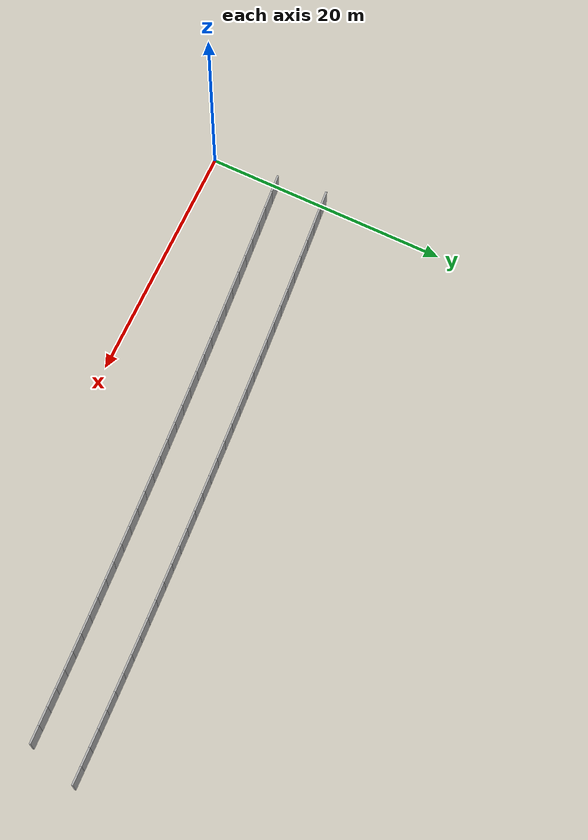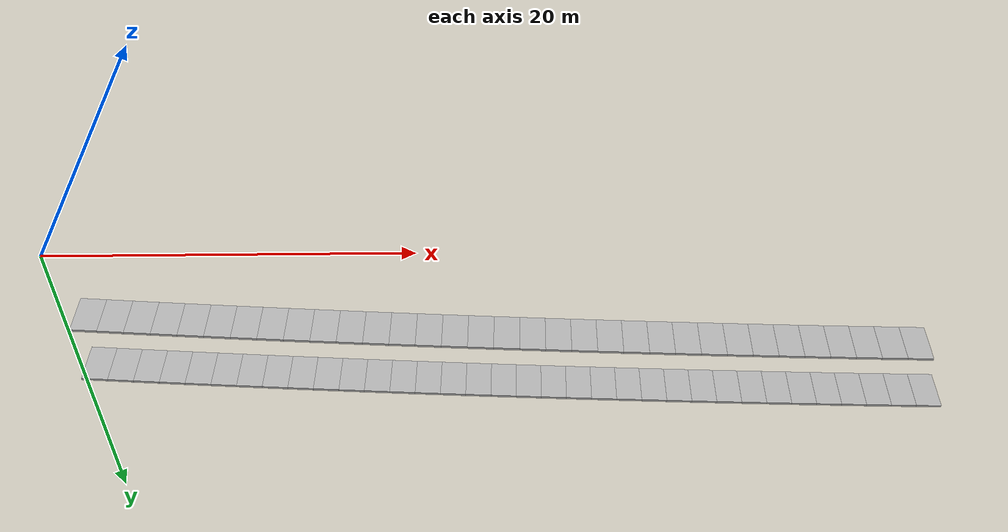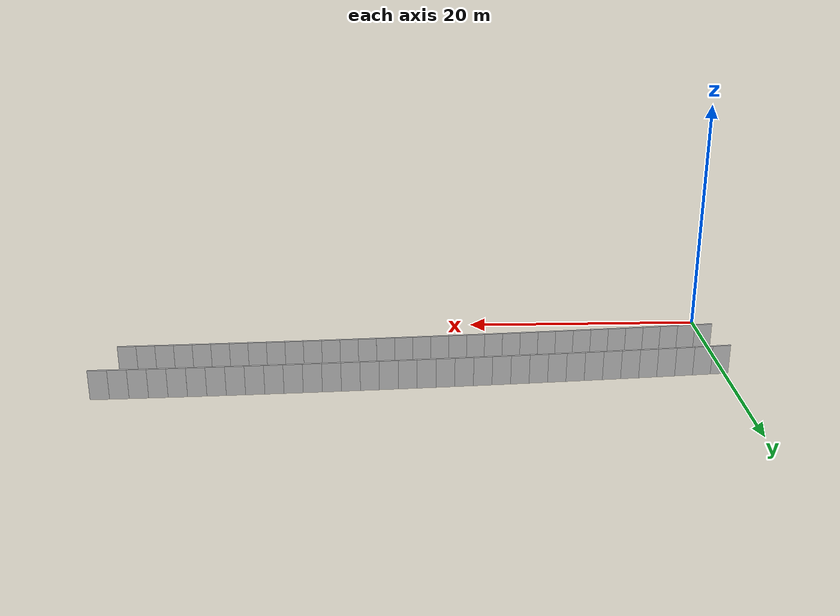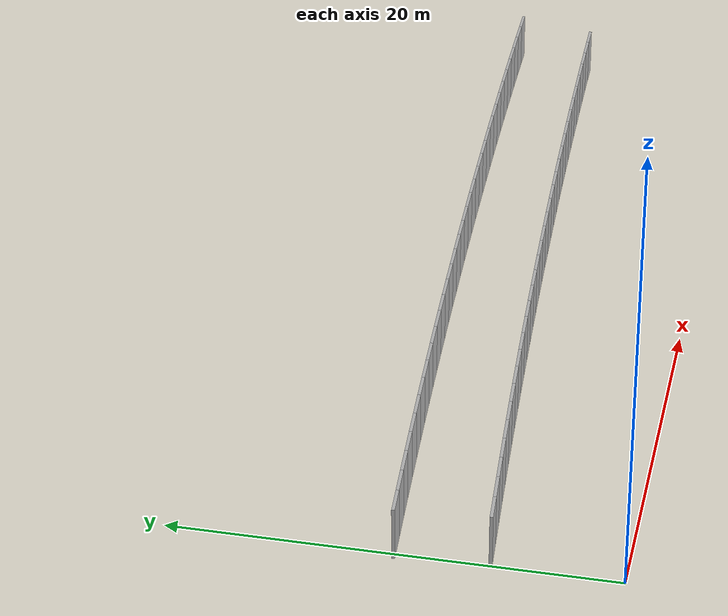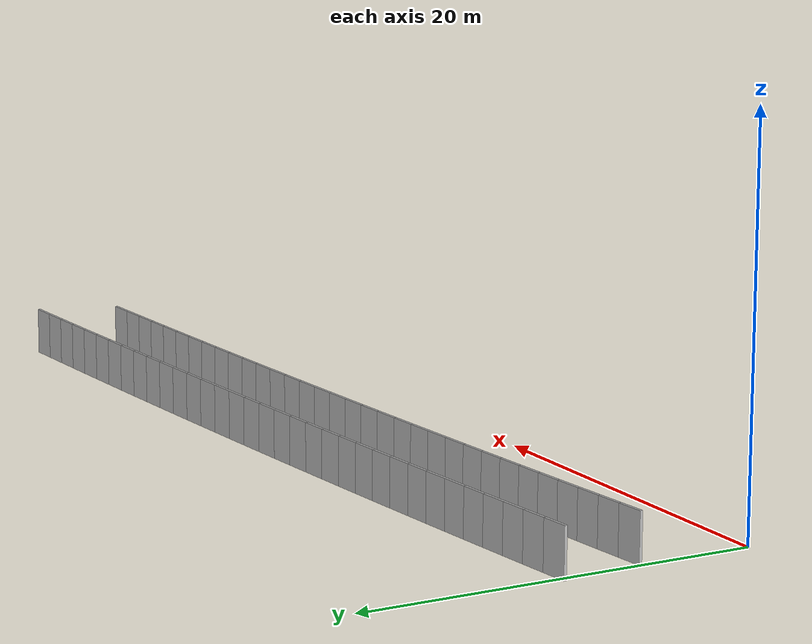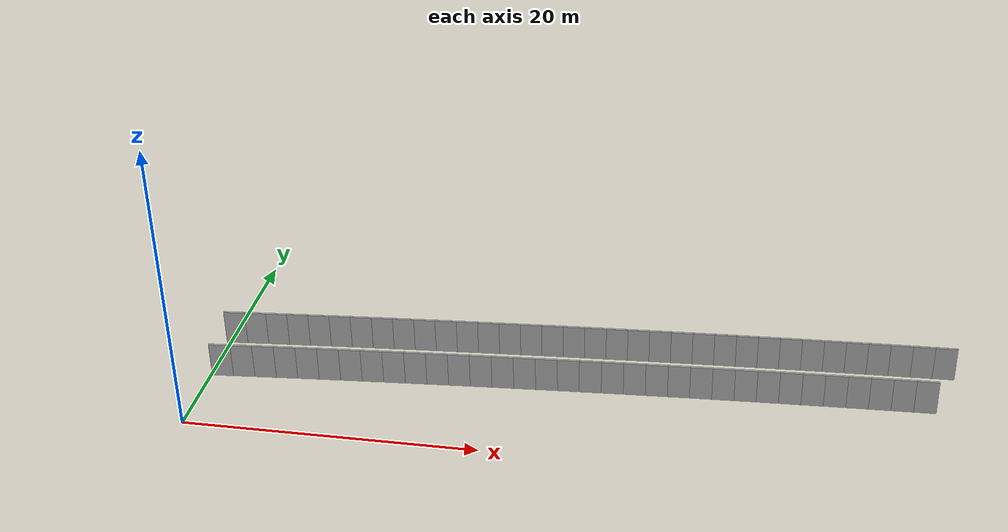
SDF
<?xml version="1.0" ?>
<sdf version="1.6">
  <model name="sps_2247">
    <pose frame="">0 0 0 0 -0 0</pose>
    <static>1</static>
    <self_collide>0</self_collide>
    <allow_auto_disable>0</allow_auto_disable>
    <link name="Wall2886">
      <kinematic>0</kinematic>
      <gravity>1</gravity>
      <self_collide>0</self_collide>
      <collision name="collision">
        <geometry>
          <box>
            <size>1.49631 0.15 2.5</size>
          </box>
        </geometry>
        <pose frame="">0 0 0 0 -0 0</pose>
      </collision>
      <visual name="visual">
        <geometry>
          <box>
            <size>1.49631 0.15 2.5</size>
          </box>
        </geometry>
        <pose frame="">0 0 0 0 -0 0</pose>
        <cast_shadows>1</cast_shadows>
        <transparency>0.0</transparency>
      </visual>
      <pose frame="">48.5933 8.70598 1.25 0 0 -3.10589</pose>
    </link>
    <link name="Wall2887">
      <kinematic>0</kinematic>
      <gravity>1</gravity>
      <self_collide>0</self_collide>
      <collision name="collision">
        <geometry>
          <box>
            <size>1.49647 0.15 2.5</size>
          </box>
        </geometry>
        <pose frame="">0 0 0 0 -0 0</pose>
      </collision>
      <visual name="visual">
        <geometry>
          <box>
            <size>1.49647 0.15 2.5</size>
          </box>
        </geometry>
        <pose frame="">0 0 0 0 -0 0</pose>
        <cast_shadows>1</cast_shadows>
        <transparency>0.0</transparency>
      </visual>
      <pose frame="">47.098 8.65129 1.25 0 0 -3.10418</pose>
    </link>
    <link name="Wall2888">
      <kinematic>0</kinematic>
      <gravity>1</gravity>
      <self_collide>0</self_collide>
      <collision name="collision">
        <geometry>
          <box>
            <size>1.49649 0.15 2.5</size>
          </box>
        </geometry>
        <pose frame="">0 0 0 0 -0 0</pose>
      </collision>
      <visual name="visual">
        <geometry>
          <box>
            <size>1.49649 0.15 2.5</size>
          </box>
        </geometry>
        <pose frame="">0 0 0 0 -0 0</pose>
        <cast_shadows>1</cast_shadows>
        <transparency>0.0</transparency>
      </visual>
      <pose frame="">45.6026 8.59419 1.25 0 0 -3.10267</pose>
    </link>
    <link name="Wall2889">
      <kinematic>0</kinematic>
      <gravity>1</gravity>
      <self_collide>0</self_collide>
      <collision name="collision">
        <geometry>
          <box>
            <size>1.49647 0.15 2.5</size>
          </box>
        </geometry>
        <pose frame="">0 0 0 0 -0 0</pose>
      </collision>
      <visual name="visual">
        <geometry>
          <box>
            <size>1.49647 0.15 2.5</size>
          </box>
        </geometry>
        <pose frame="">0 0 0 0 -0 0</pose>
        <cast_shadows>1</cast_shadows>
        <transparency>0.0</transparency>
      </visual>
      <pose frame="">44.1073 8.53477 1.25 0 0 -3.10108</pose>
    </link>
    <link name="Wall2890">
      <kinematic>0</kinematic>
      <gravity>1</gravity>
      <self_collide>0</self_collide>
      <collision name="collision">
        <geometry>
          <box>
            <size>1.4965 0.15 2.5</size>
          </box>
        </geometry>
        <pose frame="">0 0 0 0 -0 0</pose>
      </collision>
      <visual name="visual">
        <geometry>
          <box>
            <size>1.4965 0.15 2.5</size>
          </box>
        </geometry>
        <pose frame="">0 0 0 0 -0 0</pose>
        <cast_shadows>1</cast_shadows>
        <transparency>0.0</transparency>
      </visual>
      <pose frame="">42.6121 8.47298 1.25 0 0 -3.09949</pose>
    </link>
    <link name="Wall2891">
      <kinematic>0</kinematic>
      <gravity>1</gravity>
      <self_collide>0</self_collide>
      <collision name="collision">
        <geometry>
          <box>
            <size>1.49642 0.15 2.5</size>
          </box>
        </geometry>
        <pose frame="">0 0 0 0 -0 0</pose>
      </collision>
      <visual name="visual">
        <geometry>
          <box>
            <size>1.49642 0.15 2.5</size>
          </box>
        </geometry>
        <pose frame="">0 0 0 0 -0 0</pose>
        <cast_shadows>1</cast_shadows>
        <transparency>0.0</transparency>
      </visual>
      <pose frame="">41.117 8.4088 1.25 0 0 -3.0979</pose>
    </link>
    <link name="Wall2892">
      <kinematic>0</kinematic>
      <gravity>1</gravity>
      <self_collide>0</self_collide>
      <collision name="collision">
        <geometry>
          <box>
            <size>1.49653 0.15 2.5</size>
          </box>
        </geometry>
        <pose frame="">0 0 0 0 -0 0</pose>
      </collision>
      <visual name="visual">
        <geometry>
          <box>
            <size>1.49653 0.15 2.5</size>
          </box>
        </geometry>
        <pose frame="">0 0 0 0 -0 0</pose>
        <cast_shadows>1</cast_shadows>
        <transparency>0.0</transparency>
      </visual>
      <pose frame="">39.622 8.34221 1.25 0 0 -3.09627</pose>
    </link>
    <link name="Wall2893">
      <kinematic>0</kinematic>
      <gravity>1</gravity>
      <self_collide>0</self_collide>
      <collision name="collision">
        <geometry>
          <box>
            <size>1.49664 0.15 2.5</size>
          </box>
        </geometry>
        <pose frame="">0 0 0 0 -0 0</pose>
      </collision>
      <visual name="visual">
        <geometry>
          <box>
            <size>1.49664 0.15 2.5</size>
          </box>
        </geometry>
        <pose frame="">0 0 0 0 -0 0</pose>
        <cast_shadows>1</cast_shadows>
        <transparency>0.0</transparency>
      </visual>
      <pose frame="">38.127 8.27321 1.25 0 0 -3.09468</pose>
    </link>
    <link name="Wall2894">
      <kinematic>0</kinematic>
      <gravity>1</gravity>
      <self_collide>0</self_collide>
      <collision name="collision">
        <geometry>
          <box>
            <size>1.49638 0.15 2.5</size>
          </box>
        </geometry>
        <pose frame="">0 0 0 0 -0 0</pose>
      </collision>
      <visual name="visual">
        <geometry>
          <box>
            <size>1.49638 0.15 2.5</size>
          </box>
        </geometry>
        <pose frame="">0 0 0 0 -0 0</pose>
        <cast_shadows>1</cast_shadows>
        <transparency>0.0</transparency>
      </visual>
      <pose frame="">36.6322 8.20189 1.25 0 0 -3.09316</pose>
    </link>
    <link name="Wall2895">
      <kinematic>0</kinematic>
      <gravity>1</gravity>
      <self_collide>0</self_collide>
      <collision name="collision">
        <geometry>
          <box>
            <size>1.49668 0.15 2.5</size>
          </box>
        </geometry>
        <pose frame="">0 0 0 0 -0 0</pose>
      </collision>
      <visual name="visual">
        <geometry>
          <box>
            <size>1.49668 0.15 2.5</size>
          </box>
        </geometry>
        <pose frame="">0 0 0 0 -0 0</pose>
        <cast_shadows>1</cast_shadows>
        <transparency>0.0</transparency>
      </visual>
      <pose frame="">35.1374 8.12828 1.25 0 0 -3.09162</pose>
    </link>
    <link name="Wall2896">
      <kinematic>0</kinematic>
      <gravity>1</gravity>
      <self_collide>0</self_collide>
      <collision name="collision">
        <geometry>
          <box>
            <size>1.49638 0.15 2.5</size>
          </box>
        </geometry>
        <pose frame="">0 0 0 0 -0 0</pose>
      </collision>
      <visual name="visual">
        <geometry>
          <box>
            <size>1.49638 0.15 2.5</size>
          </box>
        </geometry>
        <pose frame="">0 0 0 0 -0 0</pose>
        <cast_shadows>1</cast_shadows>
        <transparency>0.0</transparency>
      </visual>
      <pose frame="">33.6428 8.05229 1.25 0 0 -3.08997</pose>
    </link>
    <link name="Wall2897">
      <kinematic>0</kinematic>
      <gravity>1</gravity>
      <self_collide>0</self_collide>
      <collision name="collision">
        <geometry>
          <box>
            <size>1.4965 0.15 2.5</size>
          </box>
        </geometry>
        <pose frame="">0 0 0 0 -0 0</pose>
      </collision>
      <visual name="visual">
        <geometry>
          <box>
            <size>1.4965 0.15 2.5</size>
          </box>
        </geometry>
        <pose frame="">0 0 0 0 -0 0</pose>
        <cast_shadows>1</cast_shadows>
        <transparency>0.0</transparency>
      </visual>
      <pose frame="">32.1485 7.97389 1.25 0 0 -3.08838</pose>
    </link>
    <link name="Wall2898">
      <kinematic>0</kinematic>
      <gravity>1</gravity>
      <self_collide>0</self_collide>
      <collision name="collision">
        <geometry>
          <box>
            <size>1.49663 0.15 2.5</size>
          </box>
        </geometry>
        <pose frame="">0 0 0 0 -0 0</pose>
      </collision>
      <visual name="visual">
        <geometry>
          <box>
            <size>1.49663 0.15 2.5</size>
          </box>
        </geometry>
        <pose frame="">0 0 0 0 -0 0</pose>
        <cast_shadows>1</cast_shadows>
        <transparency>0.0</transparency>
      </visual>
      <pose frame="">30.6541 7.89308 1.25 0 0 -3.08675</pose>
    </link>
    <link name="Wall2899">
      <kinematic>0</kinematic>
      <gravity>1</gravity>
      <self_collide>0</self_collide>
      <collision name="collision">
        <geometry>
          <box>
            <size>1.4964 0.15 2.5</size>
          </box>
        </geometry>
        <pose frame="">0 0 0 0 -0 0</pose>
      </collision>
      <visual name="visual">
        <geometry>
          <box>
            <size>1.4964 0.15 2.5</size>
          </box>
        </geometry>
        <pose frame="">0 0 0 0 -0 0</pose>
        <cast_shadows>1</cast_shadows>
        <transparency>0.0</transparency>
      </visual>
      <pose frame="">29.1599 7.80989 1.25 0 0 -3.08519</pose>
    </link>
    <link name="Wall2900">
      <kinematic>0</kinematic>
      <gravity>1</gravity>
      <self_collide>0</self_collide>
      <collision name="collision">
        <geometry>
          <box>
            <size>1.49653 0.15 2.5</size>
          </box>
        </geometry>
        <pose frame="">0 0 0 0 -0 0</pose>
      </collision>
      <visual name="visual">
        <geometry>
          <box>
            <size>1.49653 0.15 2.5</size>
          </box>
        </geometry>
        <pose frame="">0 0 0 0 -0 0</pose>
        <cast_shadows>1</cast_shadows>
        <transparency>0.0</transparency>
      </visual>
      <pose frame="">27.6659 7.72441 1.25 0 0 -3.08369</pose>
    </link>
    <link name="Wall2901">
      <kinematic>0</kinematic>
      <gravity>1</gravity>
      <self_collide>0</self_collide>
      <collision name="collision">
        <geometry>
          <box>
            <size>1.49644 0.15 2.5</size>
          </box>
        </geometry>
        <pose frame="">0 0 0 0 -0 0</pose>
      </collision>
      <visual name="visual">
        <geometry>
          <box>
            <size>1.49644 0.15 2.5</size>
          </box>
        </geometry>
        <pose frame="">0 0 0 0 -0 0</pose>
        <cast_shadows>1</cast_shadows>
        <transparency>0.0</transparency>
      </visual>
      <pose frame="">26.172 7.63649 1.25 0 0 -3.08193</pose>
    </link>
    <link name="Wall2902">
      <kinematic>0</kinematic>
      <gravity>1</gravity>
      <self_collide>0</self_collide>
      <collision name="collision">
        <geometry>
          <box>
            <size>1.49662 0.15 2.5</size>
          </box>
        </geometry>
        <pose frame="">0 0 0 0 -0 0</pose>
      </collision>
      <visual name="visual">
        <geometry>
          <box>
            <size>1.49662 0.15 2.5</size>
          </box>
        </geometry>
        <pose frame="">0 0 0 0 -0 0</pose>
        <cast_shadows>1</cast_shadows>
        <transparency>0.0</transparency>
      </visual>
      <pose frame="">24.6782 7.54628 1.25 0 0 -3.08063</pose>
    </link>
    <link name="Wall2903">
      <kinematic>0</kinematic>
      <gravity>1</gravity>
      <self_collide>0</self_collide>
      <collision name="collision">
        <geometry>
          <box>
            <size>1.49635 0.15 2.5</size>
          </box>
        </geometry>
        <pose frame="">0 0 0 0 -0 0</pose>
      </collision>
      <visual name="visual">
        <geometry>
          <box>
            <size>1.49635 0.15 2.5</size>
          </box>
        </geometry>
        <pose frame="">0 0 0 0 -0 0</pose>
        <cast_shadows>1</cast_shadows>
        <transparency>0.0</transparency>
      </visual>
      <pose frame="">23.1845 7.45378 1.25 0 0 -3.07886</pose>
    </link>
    <link name="Wall2904">
      <kinematic>0</kinematic>
      <gravity>1</gravity>
      <self_collide>0</self_collide>
      <collision name="collision">
        <geometry>
          <box>
            <size>1.49644 0.15 2.5</size>
          </box>
        </geometry>
        <pose frame="">0 0 0 0 -0 0</pose>
      </collision>
      <visual name="visual">
        <geometry>
          <box>
            <size>1.49644 0.15 2.5</size>
          </box>
        </geometry>
        <pose frame="">0 0 0 0 -0 0</pose>
        <cast_shadows>1</cast_shadows>
        <transparency>0.0</transparency>
      </visual>
      <pose frame="">21.6912 7.35878 1.25 0 0 -3.07727</pose>
    </link>
    <link name="Wall2905">
      <kinematic>0</kinematic>
      <gravity>1</gravity>
      <self_collide>0</self_collide>
      <collision name="collision">
        <geometry>
          <box>
            <size>1.49648 0.15 2.5</size>
          </box>
        </geometry>
        <pose frame="">0 0 0 0 -0 0</pose>
      </collision>
      <visual name="visual">
        <geometry>
          <box>
            <size>1.49648 0.15 2.5</size>
          </box>
        </geometry>
        <pose frame="">0 0 0 0 -0 0</pose>
        <cast_shadows>1</cast_shadows>
        <transparency>0.0</transparency>
      </visual>
      <pose frame="">20.1979 7.2614 1.25 0 0 -3.07568</pose>
    </link>
    <link name="Wall2906">
      <kinematic>0</kinematic>
      <gravity>1</gravity>
      <self_collide>0</self_collide>
      <collision name="collision">
        <geometry>
          <box>
            <size>1.49663 0.15 2.5</size>
          </box>
        </geometry>
        <pose frame="">0 0 0 0 -0 0</pose>
      </collision>
      <visual name="visual">
        <geometry>
          <box>
            <size>1.49663 0.15 2.5</size>
          </box>
        </geometry>
        <pose frame="">0 0 0 0 -0 0</pose>
        <cast_shadows>1</cast_shadows>
        <transparency>0.0</transparency>
      </visual>
      <pose frame="">18.7046 7.1617 1.25 0 0 -3.07417</pose>
    </link>
    <link name="Wall2907">
      <kinematic>0</kinematic>
      <gravity>1</gravity>
      <self_collide>0</self_collide>
      <collision name="collision">
        <geometry>
          <box>
            <size>1.49637 0.15 2.5</size>
          </box>
        </geometry>
        <pose frame="">0 0 0 0 -0 0</pose>
      </collision>
      <visual name="visual">
        <geometry>
          <box>
            <size>1.49637 0.15 2.5</size>
          </box>
        </geometry>
        <pose frame="">0 0 0 0 -0 0</pose>
        <cast_shadows>1</cast_shadows>
        <transparency>0.0</transparency>
      </visual>
      <pose frame="">17.2116 7.05958 1.25 0 0 -3.07244</pose>
    </link>
    <link name="Wall2908">
      <kinematic>0</kinematic>
      <gravity>1</gravity>
      <self_collide>0</self_collide>
      <collision name="collision">
        <geometry>
          <box>
            <size>1.49653 0.15 2.5</size>
          </box>
        </geometry>
        <pose frame="">0 0 0 0 -0 0</pose>
      </collision>
      <visual name="visual">
        <geometry>
          <box>
            <size>1.49653 0.15 2.5</size>
          </box>
        </geometry>
        <pose frame="">0 0 0 0 -0 0</pose>
        <cast_shadows>1</cast_shadows>
        <transparency>0.0</transparency>
      </visual>
      <pose frame="">15.7188 6.95509 1.25 0 0 -3.07098</pose>
    </link>
    <link name="Wall2909">
      <kinematic>0</kinematic>
      <gravity>1</gravity>
      <self_collide>0</self_collide>
      <collision name="collision">
        <geometry>
          <box>
            <size>1.49672 0.15 2.5</size>
          </box>
        </geometry>
        <pose frame="">0 0 0 0 -0 0</pose>
      </collision>
      <visual name="visual">
        <geometry>
          <box>
            <size>1.49672 0.15 2.5</size>
          </box>
        </geometry>
        <pose frame="">0 0 0 0 -0 0</pose>
        <cast_shadows>1</cast_shadows>
        <transparency>0.0</transparency>
      </visual>
      <pose frame="">14.226 6.84819 1.25 0 0 -3.06923</pose>
    </link>
    <link name="Wall2910">
      <kinematic>0</kinematic>
      <gravity>1</gravity>
      <self_collide>0</self_collide>
      <collision name="collision">
        <geometry>
          <box>
            <size>1.49643 0.15 2.5</size>
          </box>
        </geometry>
        <pose frame="">0 0 0 0 -0 0</pose>
      </collision>
      <visual name="visual">
        <geometry>
          <box>
            <size>1.49643 0.15 2.5</size>
          </box>
        </geometry>
        <pose frame="">0 0 0 0 -0 0</pose>
        <cast_shadows>1</cast_shadows>
        <transparency>0.0</transparency>
      </visual>
      <pose frame="">12.7335 6.739 1.25 0 0 -3.06791</pose>
    </link>
    <link name="Wall2911">
      <kinematic>0</kinematic>
      <gravity>1</gravity>
      <self_collide>0</self_collide>
      <collision name="collision">
        <geometry>
          <box>
            <size>1.49643 0.15 2.5</size>
          </box>
        </geometry>
        <pose frame="">0 0 0 0 -0 0</pose>
      </collision>
      <visual name="visual">
        <geometry>
          <box>
            <size>1.49643 0.15 2.5</size>
          </box>
        </geometry>
        <pose frame="">0 0 0 0 -0 0</pose>
        <cast_shadows>1</cast_shadows>
        <transparency>0.0</transparency>
      </visual>
      <pose frame="">11.2412 6.62761 1.25 0 0 -3.06627</pose>
    </link>
    <link name="Wall2912">
      <kinematic>0</kinematic>
      <gravity>1</gravity>
      <self_collide>0</self_collide>
      <collision name="collision">
        <geometry>
          <box>
            <size>1.49643 0.15 2.5</size>
          </box>
        </geometry>
        <pose frame="">0 0 0 0 -0 0</pose>
      </collision>
      <visual name="visual">
        <geometry>
          <box>
            <size>1.49643 0.15 2.5</size>
          </box>
        </geometry>
        <pose frame="">0 0 0 0 -0 0</pose>
        <cast_shadows>1</cast_shadows>
        <transparency>0.0</transparency>
      </visual>
      <pose frame="">9.74908 6.51381 1.25 0 0 -3.06467</pose>
    </link>
    <link name="Wall2913">
      <kinematic>0</kinematic>
      <gravity>1</gravity>
      <self_collide>0</self_collide>
      <collision name="collision">
        <geometry>
          <box>
            <size>1.49644 0.15 2.5</size>
          </box>
        </geometry>
        <pose frame="">0 0 0 0 -0 0</pose>
      </collision>
      <visual name="visual">
        <geometry>
          <box>
            <size>1.49644 0.15 2.5</size>
          </box>
        </geometry>
        <pose frame="">0 0 0 0 -0 0</pose>
        <cast_shadows>1</cast_shadows>
        <transparency>0.0</transparency>
      </visual>
      <pose frame="">8.25716 6.3976 1.25 0 0 -3.06304</pose>
    </link>
    <link name="Wall2914">
      <kinematic>0</kinematic>
      <gravity>1</gravity>
      <self_collide>0</self_collide>
      <collision name="collision">
        <geometry>
          <box>
            <size>1.49664 0.15 2.5</size>
          </box>
        </geometry>
        <pose frame="">0 0 0 0 -0 0</pose>
      </collision>
      <visual name="visual">
        <geometry>
          <box>
            <size>1.49664 0.15 2.5</size>
          </box>
        </geometry>
        <pose frame="">0 0 0 0 -0 0</pose>
        <cast_shadows>1</cast_shadows>
        <transparency>0.0</transparency>
      </visual>
      <pose frame="">6.76534 6.27888 1.25 0 0 -3.06133</pose>
    </link>
    <link name="Wall2915">
      <kinematic>0</kinematic>
      <gravity>1</gravity>
      <self_collide>0</self_collide>
      <collision name="collision">
        <geometry>
          <box>
            <size>1.49657 0.15 2.5</size>
          </box>
        </geometry>
        <pose frame="">0 0 0 0 -0 0</pose>
      </collision>
      <visual name="visual">
        <geometry>
          <box>
            <size>1.49657 0.15 2.5</size>
          </box>
        </geometry>
        <pose frame="">0 0 0 0 -0 0</pose>
        <cast_shadows>1</cast_shadows>
        <transparency>0.0</transparency>
      </visual>
      <pose frame="">5.27364 6.15779 1.25 0 0 -3.05985</pose>
    </link>
    <link name="Wall2916">
      <kinematic>0</kinematic>
      <gravity>1</gravity>
      <self_collide>0</self_collide>
      <collision name="collision">
        <geometry>
          <box>
            <size>1.49639 0.15 2.5</size>
          </box>
        </geometry>
        <pose frame="">0 0 0 0 -0 0</pose>
      </collision>
      <visual name="visual">
        <geometry>
          <box>
            <size>1.49639 0.15 2.5</size>
          </box>
        </geometry>
        <pose frame="">0 0 0 0 -0 0</pose>
        <cast_shadows>1</cast_shadows>
        <transparency>0.0</transparency>
      </visual>
      <pose frame="">3.78225 6.0345 1.25 0 0 -3.05837</pose>
    </link>
    <link name="Wall2917">
      <kinematic>0</kinematic>
      <gravity>1</gravity>
      <self_collide>0</self_collide>
      <collision name="collision">
        <geometry>
          <box>
            <size>1.49661 0.15 2.5</size>
          </box>
        </geometry>
        <pose frame="">0 0 0 0 -0 0</pose>
      </collision>
      <visual name="visual">
        <geometry>
          <box>
            <size>1.49661 0.15 2.5</size>
          </box>
        </geometry>
        <pose frame="">0 0 0 0 -0 0</pose>
        <cast_shadows>1</cast_shadows>
        <transparency>0.0</transparency>
      </visual>
      <pose frame="">2.29104 5.9088 1.25 0 0 -3.05662</pose>
    </link>
    <link name="Wall2918">
      <kinematic>0</kinematic>
      <gravity>1</gravity>
      <self_collide>0</self_collide>
      <collision name="collision">
        <geometry>
          <box>
            <size>1.49637 0.15 2.5</size>
          </box>
        </geometry>
        <pose frame="">0 0 0 0 -0 0</pose>
      </collision>
      <visual name="visual">
        <geometry>
          <box>
            <size>1.49637 0.15 2.5</size>
          </box>
        </geometry>
        <pose frame="">0 0 0 0 -0 0</pose>
        <cast_shadows>1</cast_shadows>
        <transparency>0.0</transparency>
      </visual>
      <pose frame="">0.800041 5.78068 1.25 0 0 -3.05514</pose>
    </link>
    <link name="Wall5496">
      <kinematic>0</kinematic>
      <gravity>1</gravity>
      <self_collide>0</self_collide>
      <collision name="collision">
        <geometry>
          <box>
            <size>1.50308 0.15 2.5</size>
          </box>
        </geometry>
        <pose frame="">0 0 0 0 -0 0</pose>
      </collision>
      <visual name="visual">
        <geometry>
          <box>
            <size>1.50308 0.15 2.5</size>
          </box>
        </geometry>
        <pose frame="">0 0 0 0 -0 0</pose>
        <cast_shadows>1</cast_shadows>
        <transparency>0.0</transparency>
      </visual>
      <pose frame="">49.9445 12.8955 1.25 0 0 -3.10727</pose>
    </link>
    <link name="Wall5497">
      <kinematic>0</kinematic>
      <gravity>1</gravity>
      <self_collide>0</self_collide>
      <collision name="collision">
        <geometry>
          <box>
            <size>1.50315 0.15 2.5</size>
          </box>
        </geometry>
        <pose frame="">0 0 0 0 -0 0</pose>
      </collision>
      <visual name="visual">
        <geometry>
          <box>
            <size>1.50315 0.15 2.5</size>
          </box>
        </geometry>
        <pose frame="">0 0 0 0 -0 0</pose>
        <cast_shadows>1</cast_shadows>
        <transparency>0.0</transparency>
      </visual>
      <pose frame="">48.4423 12.8429 1.25 0 0 -3.10593</pose>
    </link>
    <link name="Wall5498">
      <kinematic>0</kinematic>
      <gravity>1</gravity>
      <self_collide>0</self_collide>
      <collision name="collision">
        <geometry>
          <box>
            <size>1.50307 0.15 2.5</size>
          </box>
        </geometry>
        <pose frame="">0 0 0 0 -0 0</pose>
      </collision>
      <visual name="visual">
        <geometry>
          <box>
            <size>1.50307 0.15 2.5</size>
          </box>
        </geometry>
        <pose frame="">0 0 0 0 -0 0</pose>
        <cast_shadows>1</cast_shadows>
        <transparency>0.0</transparency>
      </visual>
      <pose frame="">46.9402 12.788 1.25 0 0 -3.10418</pose>
    </link>
    <link name="Wall5499">
      <kinematic>0</kinematic>
      <gravity>1</gravity>
      <self_collide>0</self_collide>
      <collision name="collision">
        <geometry>
          <box>
            <size>1.5031 0.15 2.5</size>
          </box>
        </geometry>
        <pose frame="">0 0 0 0 -0 0</pose>
      </collision>
      <visual name="visual">
        <geometry>
          <box>
            <size>1.5031 0.15 2.5</size>
          </box>
        </geometry>
        <pose frame="">0 0 0 0 -0 0</pose>
        <cast_shadows>1</cast_shadows>
        <transparency>0.0</transparency>
      </visual>
      <pose frame="">45.4383 12.7306 1.25 0 0 -3.1026</pose>
    </link>
    <link name="Wall5500">
      <kinematic>0</kinematic>
      <gravity>1</gravity>
      <self_collide>0</self_collide>
      <collision name="collision">
        <geometry>
          <box>
            <size>1.50307 0.15 2.5</size>
          </box>
        </geometry>
        <pose frame="">0 0 0 0 -0 0</pose>
      </collision>
      <visual name="visual">
        <geometry>
          <box>
            <size>1.50307 0.15 2.5</size>
          </box>
        </geometry>
        <pose frame="">0 0 0 0 -0 0</pose>
        <cast_shadows>1</cast_shadows>
        <transparency>0.0</transparency>
      </visual>
      <pose frame="">43.9364 12.6708 1.25 0 0 -3.10097</pose>
    </link>
    <link name="Wall5501">
      <kinematic>0</kinematic>
      <gravity>1</gravity>
      <self_collide>0</self_collide>
      <collision name="collision">
        <geometry>
          <box>
            <size>1.50292 0.15 2.5</size>
          </box>
        </geometry>
        <pose frame="">0 0 0 0 -0 0</pose>
      </collision>
      <visual name="visual">
        <geometry>
          <box>
            <size>1.50292 0.15 2.5</size>
          </box>
        </geometry>
        <pose frame="">0 0 0 0 -0 0</pose>
        <cast_shadows>1</cast_shadows>
        <transparency>0.0</transparency>
      </visual>
      <pose frame="">42.4347 12.6086 1.25 0 0 -3.09943</pose>
    </link>
    <link name="Wall5502">
      <kinematic>0</kinematic>
      <gravity>1</gravity>
      <self_collide>0</self_collide>
      <collision name="collision">
        <geometry>
          <box>
            <size>1.50326 0.15 2.5</size>
          </box>
        </geometry>
        <pose frame="">0 0 0 0 -0 0</pose>
      </collision>
      <visual name="visual">
        <geometry>
          <box>
            <size>1.50326 0.15 2.5</size>
          </box>
        </geometry>
        <pose frame="">0 0 0 0 -0 0</pose>
        <cast_shadows>1</cast_shadows>
        <transparency>0.0</transparency>
      </visual>
      <pose frame="">40.9329 12.5441 1.25 0 0 -3.09793</pose>
    </link>
    <link name="Wall5503">
      <kinematic>0</kinematic>
      <gravity>1</gravity>
      <self_collide>0</self_collide>
      <collision name="collision">
        <geometry>
          <box>
            <size>1.50288 0.15 2.5</size>
          </box>
        </geometry>
        <pose frame="">0 0 0 0 -0 0</pose>
      </collision>
      <visual name="visual">
        <geometry>
          <box>
            <size>1.50288 0.15 2.5</size>
          </box>
        </geometry>
        <pose frame="">0 0 0 0 -0 0</pose>
        <cast_shadows>1</cast_shadows>
        <transparency>0.0</transparency>
      </visual>
      <pose frame="">39.4314 12.4773 1.25 0 0 -3.09634</pose>
    </link>
    <link name="Wall5504">
      <kinematic>0</kinematic>
      <gravity>1</gravity>
      <self_collide>0</self_collide>
      <collision name="collision">
        <geometry>
          <box>
            <size>1.5033 0.15 2.5</size>
          </box>
        </geometry>
        <pose frame="">0 0 0 0 -0 0</pose>
      </collision>
      <visual name="visual">
        <geometry>
          <box>
            <size>1.5033 0.15 2.5</size>
          </box>
        </geometry>
        <pose frame="">0 0 0 0 -0 0</pose>
        <cast_shadows>1</cast_shadows>
        <transparency>0.0</transparency>
      </visual>
      <pose frame="">37.9299 12.4081 1.25 0 0 -3.09472</pose>
    </link>
    <link name="Wall5505">
      <kinematic>0</kinematic>
      <gravity>1</gravity>
      <self_collide>0</self_collide>
      <collision name="collision">
        <geometry>
          <box>
            <size>1.50292 0.15 2.5</size>
          </box>
        </geometry>
        <pose frame="">0 0 0 0 -0 0</pose>
      </collision>
      <visual name="visual">
        <geometry>
          <box>
            <size>1.50292 0.15 2.5</size>
          </box>
        </geometry>
        <pose frame="">0 0 0 0 -0 0</pose>
        <cast_shadows>1</cast_shadows>
        <transparency>0.0</transparency>
      </visual>
      <pose frame="">36.4285 12.3365 1.25 0 0 -3.09312</pose>
    </link>
    <link name="Wall5506">
      <kinematic>0</kinematic>
      <gravity>1</gravity>
      <self_collide>0</self_collide>
      <collision name="collision">
        <geometry>
          <box>
            <size>1.5031 0.15 2.5</size>
          </box>
        </geometry>
        <pose frame="">0 0 0 0 -0 0</pose>
      </collision>
      <visual name="visual">
        <geometry>
          <box>
            <size>1.5031 0.15 2.5</size>
          </box>
        </geometry>
        <pose frame="">0 0 0 0 -0 0</pose>
        <cast_shadows>1</cast_shadows>
        <transparency>0.0</transparency>
      </visual>
      <pose frame="">34.9273 12.2625 1.25 0 0 -3.09155</pose>
    </link>
    <link name="Wall5507">
      <kinematic>0</kinematic>
      <gravity>1</gravity>
      <self_collide>0</self_collide>
      <collision name="collision">
        <geometry>
          <box>
            <size>1.50321 0.15 2.5</size>
          </box>
        </geometry>
        <pose frame="">0 0 0 0 -0 0</pose>
      </collision>
      <visual name="visual">
        <geometry>
          <box>
            <size>1.50321 0.15 2.5</size>
          </box>
        </geometry>
        <pose frame="">0 0 0 0 -0 0</pose>
        <cast_shadows>1</cast_shadows>
        <transparency>0.0</transparency>
      </visual>
      <pose frame="">33.426 12.1862 1.25 0 0 -3.09009</pose>
    </link>
    <link name="Wall5508">
      <kinematic>0</kinematic>
      <gravity>1</gravity>
      <self_collide>0</self_collide>
      <collision name="collision">
        <geometry>
          <box>
            <size>1.50292 0.15 2.5</size>
          </box>
        </geometry>
        <pose frame="">0 0 0 0 -0 0</pose>
      </collision>
      <visual name="visual">
        <geometry>
          <box>
            <size>1.50292 0.15 2.5</size>
          </box>
        </geometry>
        <pose frame="">0 0 0 0 -0 0</pose>
        <cast_shadows>1</cast_shadows>
        <transparency>0.0</transparency>
      </visual>
      <pose frame="">31.925 12.1075 1.25 0 0 -3.08837</pose>
    </link>
    <link name="Wall5509">
      <kinematic>0</kinematic>
      <gravity>1</gravity>
      <self_collide>0</self_collide>
      <collision name="collision">
        <geometry>
          <box>
            <size>1.50304 0.15 2.5</size>
          </box>
        </geometry>
        <pose frame="">0 0 0 0 -0 0</pose>
      </collision>
      <visual name="visual">
        <geometry>
          <box>
            <size>1.50304 0.15 2.5</size>
          </box>
        </geometry>
        <pose frame="">0 0 0 0 -0 0</pose>
        <cast_shadows>1</cast_shadows>
        <transparency>0.0</transparency>
      </visual>
      <pose frame="">30.4242 12.0264 1.25 0 0 -3.08687</pose>
    </link>
    <link name="Wall5510">
      <kinematic>0</kinematic>
      <gravity>1</gravity>
      <self_collide>0</self_collide>
      <collision name="collision">
        <geometry>
          <box>
            <size>1.50319 0.15 2.5</size>
          </box>
        </geometry>
        <pose frame="">0 0 0 0 -0 0</pose>
      </collision>
      <visual name="visual">
        <geometry>
          <box>
            <size>1.50319 0.15 2.5</size>
          </box>
        </geometry>
        <pose frame="">0 0 0 0 -0 0</pose>
        <cast_shadows>1</cast_shadows>
        <transparency>0.0</transparency>
      </visual>
      <pose frame="">28.9235 11.9429 1.25 0 0 -3.08512</pose>
    </link>
    <link name="Wall5511">
      <kinematic>0</kinematic>
      <gravity>1</gravity>
      <self_collide>0</self_collide>
      <collision name="collision">
        <geometry>
          <box>
            <size>1.50313 0.15 2.5</size>
          </box>
        </geometry>
        <pose frame="">0 0 0 0 -0 0</pose>
      </collision>
      <visual name="visual">
        <geometry>
          <box>
            <size>1.50313 0.15 2.5</size>
          </box>
        </geometry>
        <pose frame="">0 0 0 0 -0 0</pose>
        <cast_shadows>1</cast_shadows>
        <transparency>0.0</transparency>
      </visual>
      <pose frame="">27.4228 11.857 1.25 0 0 -3.0837</pose>
    </link>
    <link name="Wall5512">
      <kinematic>0</kinematic>
      <gravity>1</gravity>
      <self_collide>0</self_collide>
      <collision name="collision">
        <geometry>
          <box>
            <size>1.50304 0.15 2.5</size>
          </box>
        </geometry>
        <pose frame="">0 0 0 0 -0 0</pose>
      </collision>
      <visual name="visual">
        <geometry>
          <box>
            <size>1.50304 0.15 2.5</size>
          </box>
        </geometry>
        <pose frame="">0 0 0 0 -0 0</pose>
        <cast_shadows>1</cast_shadows>
        <transparency>0.0</transparency>
      </visual>
      <pose frame="">25.9223 11.7687 1.25 0 0 -3.08195</pose>
    </link>
    <link name="Wall5513">
      <kinematic>0</kinematic>
      <gravity>1</gravity>
      <self_collide>0</self_collide>
      <collision name="collision">
        <geometry>
          <box>
            <size>1.50305 0.15 2.5</size>
          </box>
        </geometry>
        <pose frame="">0 0 0 0 -0 0</pose>
      </collision>
      <visual name="visual">
        <geometry>
          <box>
            <size>1.50305 0.15 2.5</size>
          </box>
        </geometry>
        <pose frame="">0 0 0 0 -0 0</pose>
        <cast_shadows>1</cast_shadows>
        <transparency>0.0</transparency>
      </visual>
      <pose frame="">24.422 11.678 1.25 0 0 -3.08048</pose>
    </link>
    <link name="Wall5514">
      <kinematic>0</kinematic>
      <gravity>1</gravity>
      <self_collide>0</self_collide>
      <collision name="collision">
        <geometry>
          <box>
            <size>1.50315 0.15 2.5</size>
          </box>
        </geometry>
        <pose frame="">0 0 0 0 -0 0</pose>
      </collision>
      <visual name="visual">
        <geometry>
          <box>
            <size>1.50315 0.15 2.5</size>
          </box>
        </geometry>
        <pose frame="">0 0 0 0 -0 0</pose>
        <cast_shadows>1</cast_shadows>
        <transparency>0.0</transparency>
      </visual>
      <pose frame="">22.9217 11.5849 1.25 0 0 -3.07874</pose>
    </link>
    <link name="Wall5515">
      <kinematic>0</kinematic>
      <gravity>1</gravity>
      <self_collide>0</self_collide>
      <collision name="collision">
        <geometry>
          <box>
            <size>1.5031 0.15 2.5</size>
          </box>
        </geometry>
        <pose frame="">0 0 0 0 -0 0</pose>
      </collision>
      <visual name="visual">
        <geometry>
          <box>
            <size>1.5031 0.15 2.5</size>
          </box>
        </geometry>
        <pose frame="">0 0 0 0 -0 0</pose>
        <cast_shadows>1</cast_shadows>
        <transparency>0.0</transparency>
      </visual>
      <pose frame="">21.4217 11.4894 1.25 0 0 -3.07731</pose>
    </link>
    <link name="Wall5516">
      <kinematic>0</kinematic>
      <gravity>1</gravity>
      <self_collide>0</self_collide>
      <collision name="collision">
        <geometry>
          <box>
            <size>1.50307 0.15 2.5</size>
          </box>
        </geometry>
        <pose frame="">0 0 0 0 -0 0</pose>
      </collision>
      <visual name="visual">
        <geometry>
          <box>
            <size>1.50307 0.15 2.5</size>
          </box>
        </geometry>
        <pose frame="">0 0 0 0 -0 0</pose>
        <cast_shadows>1</cast_shadows>
        <transparency>0.0</transparency>
      </visual>
      <pose frame="">19.9217 11.3917 1.25 0 0 -3.0758</pose>
    </link>
    <link name="Wall5517">
      <kinematic>0</kinematic>
      <gravity>1</gravity>
      <self_collide>0</self_collide>
      <collision name="collision">
        <geometry>
          <box>
            <size>1.50318 0.15 2.5</size>
          </box>
        </geometry>
        <pose frame="">0 0 0 0 -0 0</pose>
      </collision>
      <visual name="visual">
        <geometry>
          <box>
            <size>1.50318 0.15 2.5</size>
          </box>
        </geometry>
        <pose frame="">0 0 0 0 -0 0</pose>
        <cast_shadows>1</cast_shadows>
        <transparency>0.0</transparency>
      </visual>
      <pose frame="">18.422 11.2916 1.25 0 0 -3.0741</pose>
    </link>
    <link name="Wall5518">
      <kinematic>0</kinematic>
      <gravity>1</gravity>
      <self_collide>0</self_collide>
      <collision name="collision">
        <geometry>
          <box>
            <size>1.50304 0.15 2.5</size>
          </box>
        </geometry>
        <pose frame="">0 0 0 0 -0 0</pose>
      </collision>
      <visual name="visual">
        <geometry>
          <box>
            <size>1.50304 0.15 2.5</size>
          </box>
        </geometry>
        <pose frame="">0 0 0 0 -0 0</pose>
        <cast_shadows>1</cast_shadows>
        <transparency>0.0</transparency>
      </visual>
      <pose frame="">16.9224 11.189 1.25 0 0 -3.07246</pose>
    </link>
    <link name="Wall5519">
      <kinematic>0</kinematic>
      <gravity>1</gravity>
      <self_collide>0</self_collide>
      <collision name="collision">
        <geometry>
          <box>
            <size>1.50313 0.15 2.5</size>
          </box>
        </geometry>
        <pose frame="">0 0 0 0 -0 0</pose>
      </collision>
      <visual name="visual">
        <geometry>
          <box>
            <size>1.50313 0.15 2.5</size>
          </box>
        </geometry>
        <pose frame="">0 0 0 0 -0 0</pose>
        <cast_shadows>1</cast_shadows>
        <transparency>0.0</transparency>
      </visual>
      <pose frame="">15.4229 11.0841 1.25 0 0 -3.071</pose>
    </link>
    <link name="Wall5520">
      <kinematic>0</kinematic>
      <gravity>1</gravity>
      <self_collide>0</self_collide>
      <collision name="collision">
        <geometry>
          <box>
            <size>1.50312 0.15 2.5</size>
          </box>
        </geometry>
        <pose frame="">0 0 0 0 -0 0</pose>
      </collision>
      <visual name="visual">
        <geometry>
          <box>
            <size>1.50312 0.15 2.5</size>
          </box>
        </geometry>
        <pose frame="">0 0 0 0 -0 0</pose>
        <cast_shadows>1</cast_shadows>
        <transparency>0.0</transparency>
      </visual>
      <pose frame="">13.9236 10.9769 1.25 0 0 -3.06941</pose>
    </link>
    <link name="Wall5521">
      <kinematic>0</kinematic>
      <gravity>1</gravity>
      <self_collide>0</self_collide>
      <collision name="collision">
        <geometry>
          <box>
            <size>1.50288 0.15 2.5</size>
          </box>
        </geometry>
        <pose frame="">0 0 0 0 -0 0</pose>
      </collision>
      <visual name="visual">
        <geometry>
          <box>
            <size>1.50288 0.15 2.5</size>
          </box>
        </geometry>
        <pose frame="">0 0 0 0 -0 0</pose>
        <cast_shadows>1</cast_shadows>
        <transparency>0.0</transparency>
      </visual>
      <pose frame="">12.4246 10.8672 1.25 0 0 -3.06769</pose>
    </link>
    <link name="Wall5522">
      <kinematic>0</kinematic>
      <gravity>1</gravity>
      <self_collide>0</self_collide>
      <collision name="collision">
        <geometry>
          <box>
            <size>1.50328 0.15 2.5</size>
          </box>
        </geometry>
        <pose frame="">0 0 0 0 -0 0</pose>
      </collision>
      <visual name="visual">
        <geometry>
          <box>
            <size>1.50328 0.15 2.5</size>
          </box>
        </geometry>
        <pose frame="">0 0 0 0 -0 0</pose>
        <cast_shadows>1</cast_shadows>
        <transparency>0.0</transparency>
      </visual>
      <pose frame="">10.9257 10.7552 1.25 0 0 -3.06633</pose>
    </link>
    <link name="Wall5523">
      <kinematic>0</kinematic>
      <gravity>1</gravity>
      <self_collide>0</self_collide>
      <collision name="collision">
        <geometry>
          <box>
            <size>1.50305 0.15 2.5</size>
          </box>
        </geometry>
        <pose frame="">0 0 0 0 -0 0</pose>
      </collision>
      <visual name="visual">
        <geometry>
          <box>
            <size>1.50305 0.15 2.5</size>
          </box>
        </geometry>
        <pose frame="">0 0 0 0 -0 0</pose>
        <cast_shadows>1</cast_shadows>
        <transparency>0.0</transparency>
      </visual>
      <pose frame="">9.42693 10.6409 1.25 0 0 -3.06461</pose>
    </link>
    <link name="Wall5524">
      <kinematic>0</kinematic>
      <gravity>1</gravity>
      <self_collide>0</self_collide>
      <collision name="collision">
        <geometry>
          <box>
            <size>1.50299 0.15 2.5</size>
          </box>
        </geometry>
        <pose frame="">0 0 0 0 -0 0</pose>
      </collision>
      <visual name="visual">
        <geometry>
          <box>
            <size>1.50299 0.15 2.5</size>
          </box>
        </geometry>
        <pose frame="">0 0 0 0 -0 0</pose>
        <cast_shadows>1</cast_shadows>
        <transparency>0.0</transparency>
      </visual>
      <pose frame="">7.92846 10.5241 1.25 0 0 -3.06301</pose>
    </link>
    <link name="Wall5525">
      <kinematic>0</kinematic>
      <gravity>1</gravity>
      <self_collide>0</self_collide>
      <collision name="collision">
        <geometry>
          <box>
            <size>1.50306 0.15 2.5</size>
          </box>
        </geometry>
        <pose frame="">0 0 0 0 -0 0</pose>
      </collision>
      <visual name="visual">
        <geometry>
          <box>
            <size>1.50306 0.15 2.5</size>
          </box>
        </geometry>
        <pose frame="">0 0 0 0 -0 0</pose>
        <cast_shadows>1</cast_shadows>
        <transparency>0.0</transparency>
      </visual>
      <pose frame="">6.43017 10.4049 1.25 0 0 -3.06139</pose>
    </link>
    <link name="Wall5526">
      <kinematic>0</kinematic>
      <gravity>1</gravity>
      <self_collide>0</self_collide>
      <collision name="collision">
        <geometry>
          <box>
            <size>1.50301 0.15 2.5</size>
          </box>
        </geometry>
        <pose frame="">0 0 0 0 -0 0</pose>
      </collision>
      <visual name="visual">
        <geometry>
          <box>
            <size>1.50301 0.15 2.5</size>
          </box>
        </geometry>
        <pose frame="">0 0 0 0 -0 0</pose>
        <cast_shadows>1</cast_shadows>
        <transparency>0.0</transparency>
      </visual>
      <pose frame="">4.93206 10.2833 1.25 0 0 -3.0598</pose>
    </link>
    <link name="Wall5527">
      <kinematic>0</kinematic>
      <gravity>1</gravity>
      <self_collide>0</self_collide>
      <collision name="collision">
        <geometry>
          <box>
            <size>1.50319 0.15 2.5</size>
          </box>
        </geometry>
        <pose frame="">0 0 0 0 -0 0</pose>
      </collision>
      <visual name="visual">
        <geometry>
          <box>
            <size>1.50319 0.15 2.5</size>
          </box>
        </geometry>
        <pose frame="">0 0 0 0 -0 0</pose>
        <cast_shadows>1</cast_shadows>
        <transparency>0.0</transparency>
      </visual>
      <pose frame="">3.43407 10.1594 1.25 0 0 -3.05834</pose>
    </link>
    <link name="Wall5528">
      <kinematic>0</kinematic>
      <gravity>1</gravity>
      <self_collide>0</self_collide>
      <collision name="collision">
        <geometry>
          <box>
            <size>1.50303 0.15 2.5</size>
          </box>
        </geometry>
        <pose frame="">0 0 0 0 -0 0</pose>
      </collision>
      <visual name="visual">
        <geometry>
          <box>
            <size>1.50303 0.15 2.5</size>
          </box>
        </geometry>
        <pose frame="">0 0 0 0 -0 0</pose>
        <cast_shadows>1</cast_shadows>
        <transparency>0.0</transparency>
      </visual>
      <pose frame="">1.93627 10.0332 1.25 0 0 -3.05674</pose>
    </link>
    <link name="Wall5529">
      <kinematic>0</kinematic>
      <gravity>1</gravity>
      <self_collide>0</self_collide>
      <collision name="collision">
        <geometry>
          <box>
            <size>1.50299 0.15 2.5</size>
          </box>
        </geometry>
        <pose frame="">0 0 0 0 -0 0</pose>
      </collision>
      <visual name="visual">
        <geometry>
          <box>
            <size>1.50299 0.15 2.5</size>
          </box>
        </geometry>
        <pose frame="">0 0 0 0 -0 0</pose>
        <cast_shadows>1</cast_shadows>
        <transparency>0.0</transparency>
      </visual>
      <pose frame="">0.438773 9.90459 1.25 0 0 -3.05511</pose>
    </link>
  </model>
</sdf>
